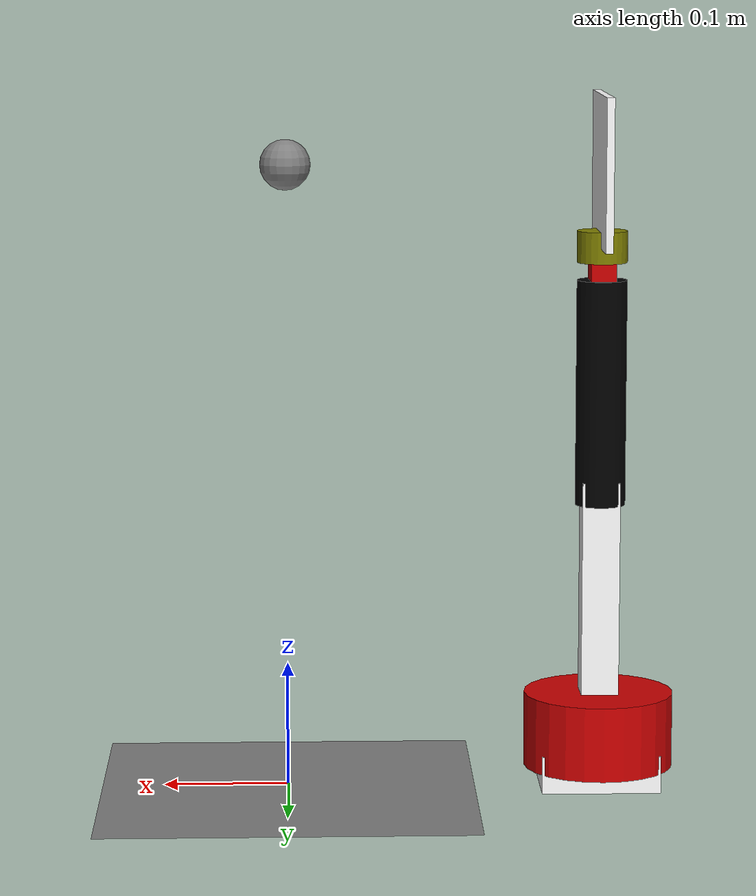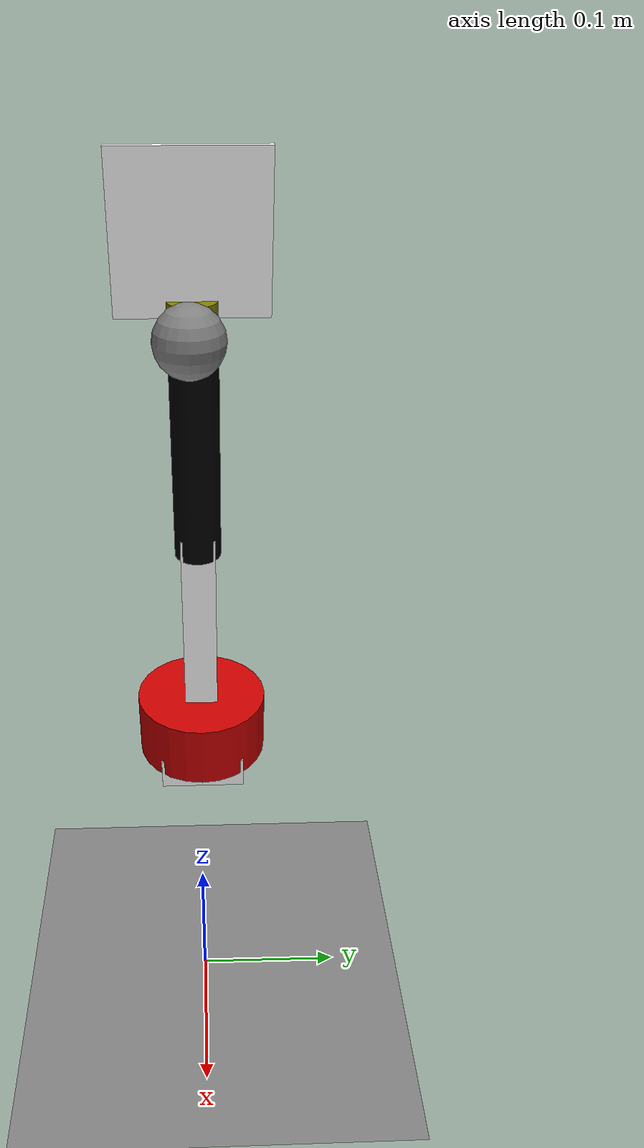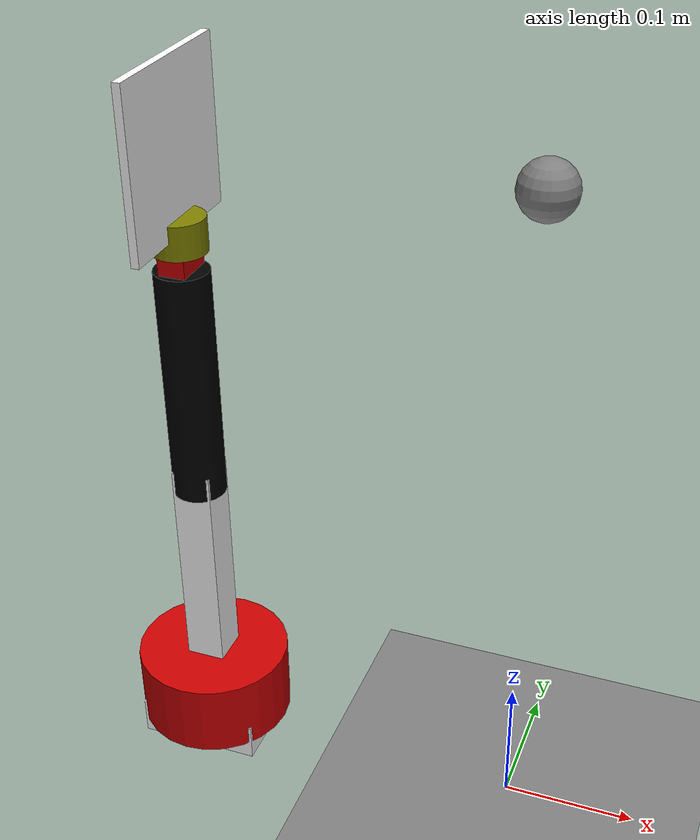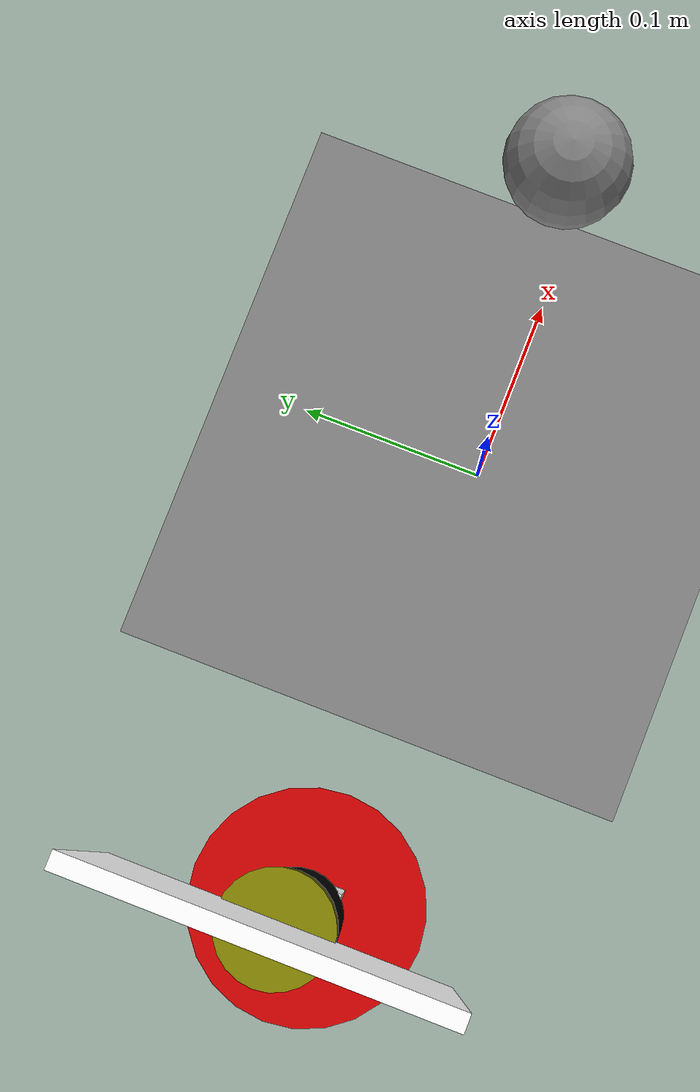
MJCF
<mujoco model="dobot_push">
    <!--default-->
    <default>
        <!--need to define ctrllimited='false' in dobot.xml, because velocity config will override polisition config-->
        <position kp="1"/>
        <velocity kv="10" ctrlrange='-1 1' ctrllimited='true'/>
        <geom solref="0.02 0.1"/>
    </default>

    <asset>
        <texture builtin="checker" type="2d" height="100" width="100" mark="none" markrgb="1 1 1" name="square_box" rgb1="0. 0. 0." rgb2="1. 1. 1."/>
        <material name="plane" texrepeat="5 5" texture="square_box"/>
    </asset>

    <!--environment-->
    <worldbody>
        <light diffuse=".5 .5 .5" pos="0 0 3" dir="0 0 -1"/>
        <!--table-->
        <geom type="plane" material="plane" size="0.15 0.15 0.1"/>
        <!--cube-->
        <body name="cube" pos="0 0 0">
            <inertial pos="0 0 0" quat="0.707107 0.707107 0 0" mass=".005" diaginertia="1 1 1" />
            <geom name="ball" pos="0 0 0.5" size="0.02 0.02 0.02" type="sphere"/>
            <freejoint name="free_joint"/>
        </body>
    </worldbody>

    <!--robot-->
    <include file="./abb.xml"/>
</mujoco>

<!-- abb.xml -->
<mujoco model="abb_arm">
    <compiler angle="radian" />
    <size njmax="500" nconmax="100" />
    <worldbody>
        <body name="base_dummy_link" pos="-0.25 0 0">
            <inertial pos="0 0 0" mass="0" diaginertia="0 0 0" />
            <body name="base_link" pos="0 0 0">
                <inertial pos="0 0 0" quat="0.707107 0.707107 0 0" mass=".5" diaginertia="1 1 0.5" />
                <geom size="0.0475 0.0385 0.015" pos="0 0 0.015" type="box" rgba="1 1 1 1" />
                <body name="shoulder_link" pos="0 0 0.015">
                    <inertial pos="0 0 0" quat="0.707107 0.707107 0 0" mass=".1" diaginertia="1 1 0.5" />
                    <joint name="shoulder_joint" pos="0 0 0" axis="0 0 1" limited="true" range="-2.35619 2.35619" />
                    <geom size="0.06 0.03" pos="0 0 0.03" type="cylinder" rgba="0.8 0 0 1" />
                    <body name="bigarm_link" pos="0 0 0.065">
                        <inertial pos="0 0 0" quat="0.707107 0.707107 0 0" mass=".1" diaginertia="1 1 0.5" />
                        <joint name="bigarm_joint" pos="0 0 0" axis="0 1 0" limited="true" range="-1.48353 1.48353" />
                        <geom size="0.015 0.015 0.1" pos="0 0 0.0675" type="box" rgba="1 1 1 1" />
                        <body name="forearm_link" pos="0 0 0.145">
                            <inertial pos="0 0 0" quat="0.707107 0.707107 0 0" mass=".1" diaginertia="1 1 0.5" />
                            <joint name="forearm_joint" pos="0 0 0" axis="0 1 0" limited="true" range="0.270796 2.8708" />
                            <geom size="0.02 0.09" pos="0 0 0.0935" type="cylinder" rgba="0 0 0 1" />
                            <body name="gripper_link" pos="0 0 0.18">
                                <inertial pos="0 0 0" quat="0.707107 0.707107 0 0" mass=".1" diaginertia="1 1 0.5" />
                                <joint name="gripper_joint" pos="0 0 0" axis="0 1 0" limited="true" range="-2.36 2.36" />
                                <geom size="0.01 0.015 0.015" pos="0 0 0.0115" type="box" rgba="0.8 0 0 1" />
                                <body name="chuck_link" pos="0 0 0.1">
                                    <inertial pos="0 0 0" quat="0.707107 0.707107 0 0" mass=".1" diaginertia="1 1 0.5" />
                                    <joint name="chuck_joint" pos="0 0 0" axis="0 0 1" limited="true" range="-2.36 2.36" />
                                    <geom size="0.02 0.0125" pos="0 0 -0.07" type="cylinder" rgba="0.5 0.5 0 1" />
                                    <body name="endeffector" pos="0 0 -0.07">
                                        <inertial pos="0 0 0" quat="0.707107 0.707107 0 0" mass=".1" diaginertia="1 1 0.5" />
                                        <joint name="hand_joint" pos="0 0 0" axis="1 0 0" limited="true" range="-2.36 2.36" />
                                        <geom size="0.003 0.06 0.06" pos="0 0 0.06" type="box" rgba="1 1 1 1" />
                                    </body>
                                </body>
                            </body>
                        </body>
                    </body>
                </body>
            </body>
        </body>
    </worldbody>
    <actuator>
		<position name="shoulder_position" joint="shoulder_joint" ctrllimited='false'/>
		<position name="bigarm_position" joint="bigarm_joint" ctrllimited='false'/>
        <position name="forearm_position" joint="forearm_joint" ctrllimited='false'/>
        <position name="gripper_position" joint="gripper_joint" ctrllimited='false'/>
        <position name="chuck_position" joint="chuck_joint" ctrllimited='false'/>
        <position name="hand_position" joint="hand_joint" ctrllimited='false'/>
        <velocity name="shoulder_velocity" joint="shoulder_joint"/>
		<velocity name="bigarm_velocity" joint="bigarm_joint"/>
        <velocity name="forearm_velocity" joint="forearm_joint"/>
        <velocity name="gripper_velocity" joint="gripper_joint"/>
        <velocity name="chuck_velocity" joint="chuck_joint"/>
        <velocity name="hand_velocity" joint="hand_joint"/>
	</actuator>
</mujoco>
